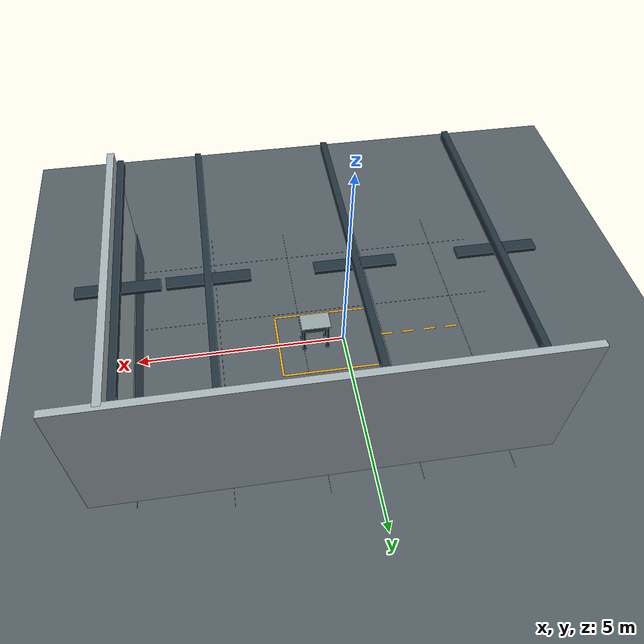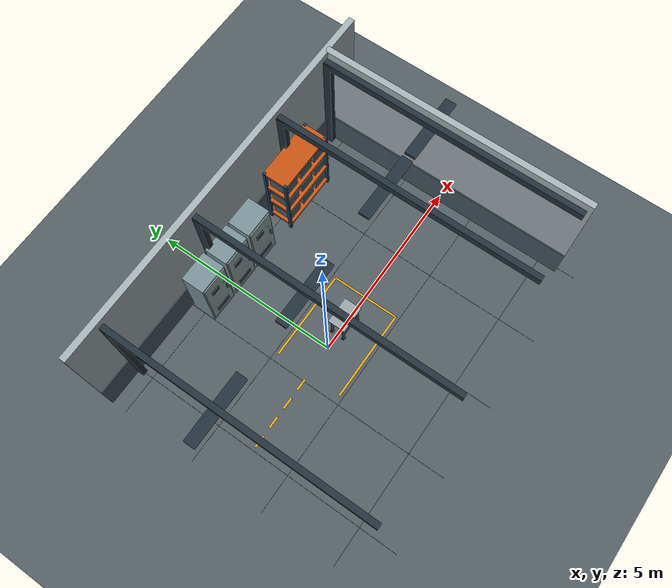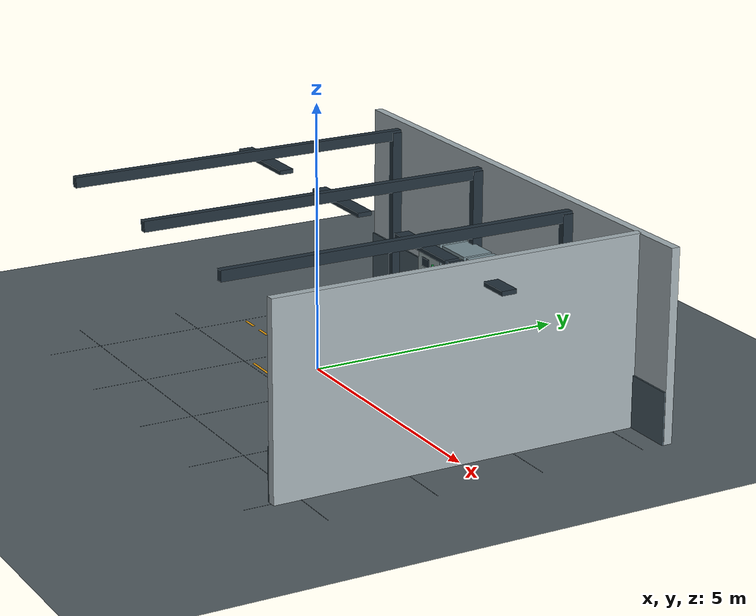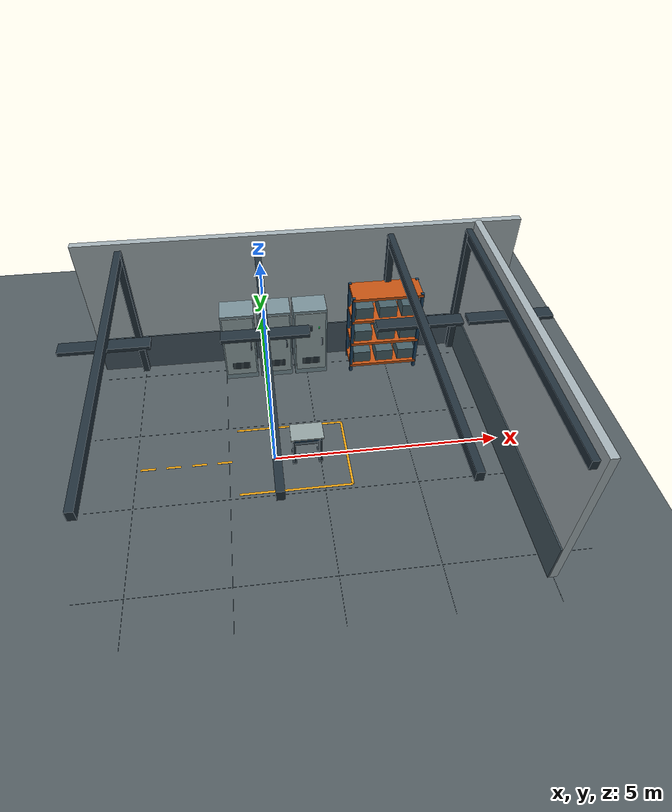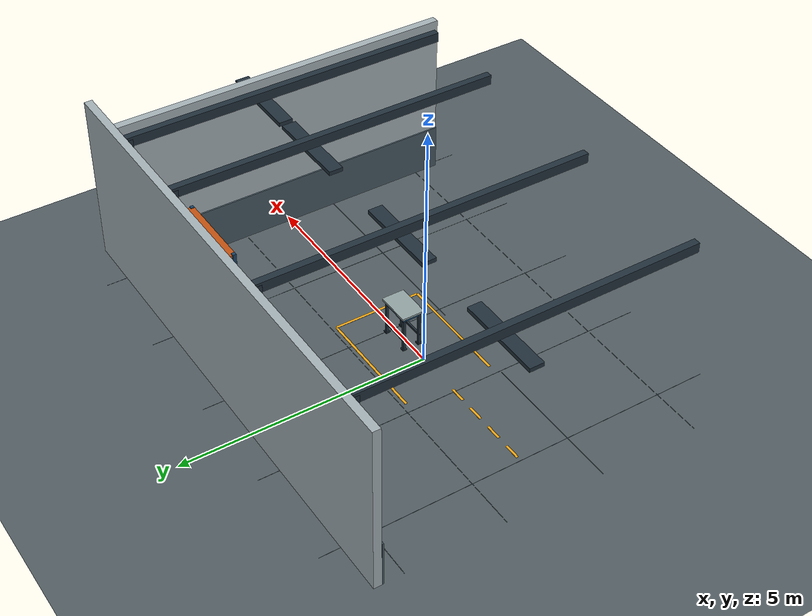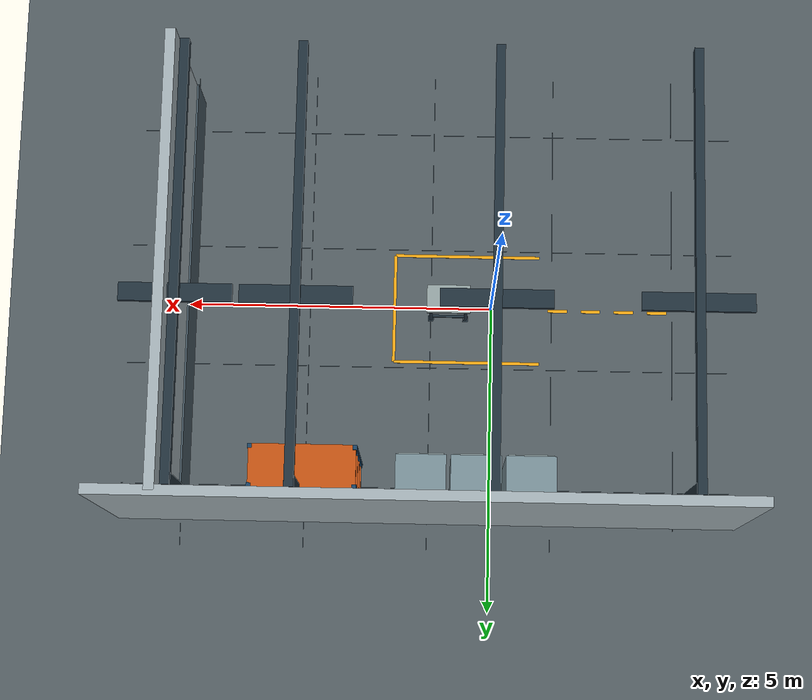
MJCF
<?xml version='1.0' encoding='utf-8'?>
<mujoco>
  <asset>
    <material name="factory_floor" rgba=".32 .36 .38 1" specular=".15" shininess=".2" />
    <material name="factory_wall" rgba=".64 .69 .71 1" specular=".15" shininess=".2" />
    <material name="factory_wainscot" rgba=".27 .34 .38 1" specular=".15" shininess=".2" />
    <material name="factory_frame" rgba=".13 .19 .23 1" specular=".15" shininess=".2" />
    <material name="factory_cabinet" rgba=".47 .56 .59 1" specular=".15" shininess=".2" />
    <material name="factory_door" rgba=".58 .65 .66 1" specular=".15" shininess=".2" />
    <material name="factory_yellow" rgba=".94 .65 .07 1" specular=".15" shininess=".2" />
    <material name="factory_shelf_blue" rgba=".10 .26 .39 1" specular=".15" shininess=".2" />
    <material name="factory_shelf_orange" rgba=".76 .32 .07 1" specular=".15" shininess=".2" />
    <material name="factory_bin" rgba=".27 .37 .40 1" specular=".15" shininess=".2" />
    <material name="factory_tabletop" rgba=".57 .63 .63 1" specular=".15" shininess=".2" />
    <material name="factory_led" rgba=".88 .94 1 1" specular=".15" shininess=".2" emission=".65" />
    <material name="factory_green" rgba=".12 .8 .35 1" specular=".15" shininess=".2" emission=".65" />
    <texture name="factory_background" type="skybox" builtin="gradient" rgb1=".35 .40 .44" rgb2=".48 .53 .56" width="256" height="1024" />
  </asset>
  <worldbody>
    <geom name="ground" type="plane" size="8 8 .1" material="factory_floor" contype="1" conaffinity="1023" />
    <geom name="floor_seam_x0" type="box" pos="-3 0 0.001" size="0.003 4 0.001" material="factory_wainscot" contype="0" conaffinity="0" />
    <geom name="floor_seam_x1" type="box" pos="-1 0 0.001" size="0.003 4 0.001" material="factory_wainscot" contype="0" conaffinity="0" />
    <geom name="floor_seam_x2" type="box" pos="1 0 0.001" size="0.003 4 0.001" material="factory_wainscot" contype="0" conaffinity="0" />
    <geom name="floor_seam_x3" type="box" pos="3 0 0.001" size="0.003 4 0.001" material="factory_wainscot" contype="0" conaffinity="0" />
    <geom name="floor_seam_x4" type="box" pos="5 0 0.001" size="0.003 4 0.001" material="factory_wainscot" contype="0" conaffinity="0" />
    <geom name="floor_seam_y0" type="box" pos="1 -3 0.001" size="5 0.003 0.001" material="factory_wainscot" contype="0" conaffinity="0" />
    <geom name="floor_seam_y1" type="box" pos="1 -1 0.001" size="5 0.003 0.001" material="factory_wainscot" contype="0" conaffinity="0" />
    <geom name="floor_seam_y2" type="box" pos="1 1 0.001" size="5 0.003 0.001" material="factory_wainscot" contype="0" conaffinity="0" />
    <geom name="floor_seam_y3" type="box" pos="1 3 0.001" size="5 0.003 0.001" material="factory_wainscot" contype="0" conaffinity="0" />
    <geom name="rear_wall" type="box" pos="1 3.5 1.75" size="5 0.08 1.75" material="factory_wall" contype="0" conaffinity="0" />
    <geom name="end_wall" type="box" pos="5 0 1.75" size="0.08 3.5 1.75" material="factory_wall" contype="0" conaffinity="0" />
    <geom name="rear_wall_lower" type="box" pos="1 3.4 0.48" size="5 0.015 0.48" material="factory_wainscot" contype="0" conaffinity="0" />
    <geom name="end_wall_lower" type="box" pos="4.9 0 0.48" size="0.015 3.5 0.48" material="factory_wainscot" contype="0" conaffinity="0" />
    <geom name="column_0" type="box" pos="-3 3.32 1.65" size="0.075 0.1 1.65" material="factory_frame" contype="0" conaffinity="0" />
    <geom name="beam_0" type="box" pos="-3 0 3.25" size="0.07 3.4 0.1" material="factory_frame" contype="0" conaffinity="0" />
    <geom name="light_housing_0" type="box" pos="-3 0.5 3.11" size="0.85 0.14 0.04" material="factory_frame" contype="0" conaffinity="0" />
    <geom name="light_panel_0" type="box" pos="-3 0.5 3.065" size="0.79 0.115 0.005" material="factory_led" contype="0" conaffinity="0" />
    <geom name="column_1" type="box" pos="0 3.32 1.65" size="0.075 0.1 1.65" material="factory_frame" contype="0" conaffinity="0" />
    <geom name="beam_1" type="box" pos="0 0 3.25" size="0.07 3.4 0.1" material="factory_frame" contype="0" conaffinity="0" />
    <geom name="light_housing_1" type="box" pos="0 0.5 3.11" size="0.85 0.14 0.04" material="factory_frame" contype="0" conaffinity="0" />
    <geom name="light_panel_1" type="box" pos="0 0.5 3.065" size="0.79 0.115 0.005" material="factory_led" contype="0" conaffinity="0" />
    <geom name="column_2" type="box" pos="3 3.32 1.65" size="0.075 0.1 1.65" material="factory_frame" contype="0" conaffinity="0" />
    <geom name="beam_2" type="box" pos="3 0 3.25" size="0.07 3.4 0.1" material="factory_frame" contype="0" conaffinity="0" />
    <geom name="light_housing_2" type="box" pos="3 0.5 3.11" size="0.85 0.14 0.04" material="factory_frame" contype="0" conaffinity="0" />
    <geom name="light_panel_2" type="box" pos="3 0.5 3.065" size="0.79 0.115 0.005" material="factory_led" contype="0" conaffinity="0" />
    <geom name="column_3" type="box" pos="4.8 3.32 1.65" size="0.075 0.1 1.65" material="factory_frame" contype="0" conaffinity="0" />
    <geom name="beam_3" type="box" pos="4.8 0 3.25" size="0.07 3.4 0.1" material="factory_frame" contype="0" conaffinity="0" />
    <geom name="light_housing_3" type="box" pos="4.8 0.5 3.11" size="0.85 0.14 0.04" material="factory_frame" contype="0" conaffinity="0" />
    <geom name="light_panel_3" type="box" pos="4.8 0.5 3.065" size="0.79 0.115 0.005" material="factory_led" contype="0" conaffinity="0" />
    <light name="factory_light_0" pos="0 -1 3" dir="0 0 -1" directional="true" diffuse=".48 .50 .52" ambient=".07 .07 .07" specular=".12 .12 .12" castshadow="false" />
    <light name="factory_light_1" pos="2 2 3" dir="0 0 -1" directional="true" diffuse=".32 .34 .36" ambient=".07 .07 .07" specular=".12 .12 .12" castshadow="false" />
    <light name="factory_light_2" pos="-2 1 2.8" dir="0 0 -1" directional="true" diffuse=".24 .25 .27" ambient=".07 .07 .07" specular=".12 .12 .12" castshadow="false" />
    <geom name="cabinet_0" type="box" pos="-0.6 2.99 0.95" size="0.39 0.3 0.95" material="factory_cabinet" contype="0" conaffinity="0" />
    <geom name="cabinet_door_0" type="box" pos="-0.6 2.68 1.0" size="0.355 0.015 0.84" material="factory_door" contype="0" conaffinity="0" />
    <geom name="cabinet_handle_0" type="box" pos="-0.32999999999999996 2.65 1.02" size="0.018 0.024 0.1" material="factory_frame" contype="0" conaffinity="0" />
    <geom name="cabinet_display_0" type="box" pos="-0.6799999999999999 2.65 1.42" size="0.12 0.012 0.08" material="factory_frame" contype="0" conaffinity="0" />
    <geom name="cabinet_indicator_0" type="box" pos="-0.39999999999999997 2.64 1.44" size="0.018 0.015 0.018" material="factory_green" contype="0" conaffinity="0" />
    <geom name="cabinet_vent_0_0" type="box" pos="-0.6 2.655 0.35" size="0.21 0.012 0.007" material="factory_wainscot" contype="0" conaffinity="0" />
    <geom name="cabinet_vent_0_1" type="box" pos="-0.6 2.655 0.38999999999999996" size="0.21 0.012 0.007" material="factory_wainscot" contype="0" conaffinity="0" />
    <geom name="cabinet_vent_0_2" type="box" pos="-0.6 2.655 0.43" size="0.21 0.012 0.007" material="factory_wainscot" contype="0" conaffinity="0" />
    <geom name="cabinet_vent_0_3" type="box" pos="-0.6 2.655 0.47" size="0.21 0.012 0.007" material="factory_wainscot" contype="0" conaffinity="0" />
    <geom name="cabinet_vent_0_4" type="box" pos="-0.6 2.655 0.51" size="0.21 0.012 0.007" material="factory_wainscot" contype="0" conaffinity="0" />
    <geom name="cabinet_1" type="box" pos="0.25 2.99 0.95" size="0.39 0.3 0.95" material="factory_cabinet" contype="0" conaffinity="0" />
    <geom name="cabinet_door_1" type="box" pos="0.25 2.68 1.0" size="0.355 0.015 0.84" material="factory_door" contype="0" conaffinity="0" />
    <geom name="cabinet_handle_1" type="box" pos="0.52 2.65 1.02" size="0.018 0.024 0.1" material="factory_frame" contype="0" conaffinity="0" />
    <geom name="cabinet_display_1" type="box" pos="0.16999999999999998 2.65 1.42" size="0.12 0.012 0.08" material="factory_frame" contype="0" conaffinity="0" />
    <geom name="cabinet_indicator_1" type="box" pos="0.45 2.64 1.44" size="0.018 0.015 0.018" material="factory_green" contype="0" conaffinity="0" />
    <geom name="cabinet_vent_1_0" type="box" pos="0.25 2.655 0.35" size="0.21 0.012 0.007" material="factory_wainscot" contype="0" conaffinity="0" />
    <geom name="cabinet_vent_1_1" type="box" pos="0.25 2.655 0.38999999999999996" size="0.21 0.012 0.007" material="factory_wainscot" contype="0" conaffinity="0" />
    <geom name="cabinet_vent_1_2" type="box" pos="0.25 2.655 0.43" size="0.21 0.012 0.007" material="factory_wainscot" contype="0" conaffinity="0" />
    <geom name="cabinet_vent_1_3" type="box" pos="0.25 2.655 0.47" size="0.21 0.012 0.007" material="factory_wainscot" contype="0" conaffinity="0" />
    <geom name="cabinet_vent_1_4" type="box" pos="0.25 2.655 0.51" size="0.21 0.012 0.007" material="factory_wainscot" contype="0" conaffinity="0" />
    <geom name="cabinet_2" type="box" pos="1.1 2.99 0.95" size="0.39 0.3 0.95" material="factory_cabinet" contype="0" conaffinity="0" />
    <geom name="cabinet_door_2" type="box" pos="1.1 2.68 1.0" size="0.355 0.015 0.84" material="factory_door" contype="0" conaffinity="0" />
    <geom name="cabinet_handle_2" type="box" pos="1.37 2.65 1.02" size="0.018 0.024 0.1" material="factory_frame" contype="0" conaffinity="0" />
    <geom name="cabinet_display_2" type="box" pos="1.02 2.65 1.42" size="0.12 0.012 0.08" material="factory_frame" contype="0" conaffinity="0" />
    <geom name="cabinet_indicator_2" type="box" pos="1.3 2.64 1.44" size="0.018 0.015 0.018" material="factory_green" contype="0" conaffinity="0" />
    <geom name="cabinet_vent_2_0" type="box" pos="1.1 2.655 0.35" size="0.21 0.012 0.007" material="factory_wainscot" contype="0" conaffinity="0" />
    <geom name="cabinet_vent_2_1" type="box" pos="1.1 2.655 0.38999999999999996" size="0.21 0.012 0.007" material="factory_wainscot" contype="0" conaffinity="0" />
    <geom name="cabinet_vent_2_2" type="box" pos="1.1 2.655 0.43" size="0.21 0.012 0.007" material="factory_wainscot" contype="0" conaffinity="0" />
    <geom name="cabinet_vent_2_3" type="box" pos="1.1 2.655 0.47" size="0.21 0.012 0.007" material="factory_wainscot" contype="0" conaffinity="0" />
    <geom name="cabinet_vent_2_4" type="box" pos="1.1 2.655 0.51" size="0.21 0.012 0.007" material="factory_wainscot" contype="0" conaffinity="0" />
    <geom name="rack_post_2.1_2.65" type="box" pos="2.1 2.65 1.1" size="0.035 0.035 1.1" material="factory_shelf_blue" contype="0" conaffinity="0" />
    <geom name="rack_post_2.1_3.25" type="box" pos="2.1 3.25 1.1" size="0.035 0.035 1.1" material="factory_shelf_blue" contype="0" conaffinity="0" />
    <geom name="rack_post_3.7_2.65" type="box" pos="3.7 2.65 1.1" size="0.035 0.035 1.1" material="factory_shelf_blue" contype="0" conaffinity="0" />
    <geom name="rack_post_3.7_3.25" type="box" pos="3.7 3.25 1.1" size="0.035 0.035 1.1" material="factory_shelf_blue" contype="0" conaffinity="0" />
    <geom name="rack_shelf_0" type="box" pos="2.9 2.95 0.18" size="0.82 0.34 0.035" material="factory_shelf_orange" contype="0" conaffinity="0" />
    <geom name="rack_bin_0_0" type="box" pos="2.38 2.94 0.37" size="0.21 0.25 0.15" material="factory_bin" contype="0" conaffinity="0" />
    <geom name="rack_bin_0_1" type="box" pos="2.94 2.94 0.37" size="0.21 0.25 0.15" material="factory_bin" contype="0" conaffinity="0" />
    <geom name="rack_bin_0_2" type="box" pos="3.48 2.94 0.37" size="0.21 0.25 0.15" material="factory_bin" contype="0" conaffinity="0" />
    <geom name="rack_shelf_1" type="box" pos="2.9 2.95 0.85" size="0.82 0.34 0.035" material="factory_shelf_orange" contype="0" conaffinity="0" />
    <geom name="rack_bin_1_0" type="box" pos="2.38 2.94 1.04" size="0.21 0.25 0.15" material="factory_bin" contype="0" conaffinity="0" />
    <geom name="rack_bin_1_1" type="box" pos="2.94 2.94 1.04" size="0.21 0.25 0.15" material="factory_bin" contype="0" conaffinity="0" />
    <geom name="rack_bin_1_2" type="box" pos="3.48 2.94 1.04" size="0.21 0.25 0.15" material="factory_bin" contype="0" conaffinity="0" />
    <geom name="rack_shelf_2" type="box" pos="2.9 2.95 1.52" size="0.82 0.34 0.035" material="factory_shelf_orange" contype="0" conaffinity="0" />
    <geom name="rack_bin_2_0" type="box" pos="2.38 2.94 1.71" size="0.21 0.25 0.15" material="factory_bin" contype="0" conaffinity="0" />
    <geom name="rack_bin_2_1" type="box" pos="2.94 2.94 1.71" size="0.21 0.25 0.15" material="factory_bin" contype="0" conaffinity="0" />
    <geom name="rack_bin_2_2" type="box" pos="3.48 2.94 1.71" size="0.21 0.25 0.15" material="factory_bin" contype="0" conaffinity="0" />
    <geom name="rack_shelf_3" type="box" pos="2.9 2.95 2.15" size="0.82 0.34 0.035" material="factory_shelf_orange" contype="0" conaffinity="0" />
    <geom name="cell_line_-0.9" type="box" pos="0.4 -0.9 0.003" size="1.2 0.025 0.002" material="factory_yellow" contype="0" conaffinity="0" />
    <geom name="cell_line_0.9" type="box" pos="0.4 0.9 0.003" size="1.2 0.025 0.002" material="factory_yellow" contype="0" conaffinity="0" />
    <geom name="cell_end" type="box" pos="1.6 0 0.003" size="0.025 0.9 0.002" material="factory_yellow" contype="0" conaffinity="0" />
    <geom name="approach_dash_0" type="box" pos="-1.1 0 0.003" size="0.16 0.025 0.002" material="factory_yellow" contype="0" conaffinity="0" />
    <geom name="approach_dash_1" type="box" pos="-1.65 0 0.003" size="0.16 0.025 0.002" material="factory_yellow" contype="0" conaffinity="0" />
    <geom name="approach_dash_2" type="box" pos="-2.2 0 0.003" size="0.16 0.025 0.002" material="factory_yellow" contype="0" conaffinity="0" />
    <geom name="approach_dash_3" type="box" pos="-2.75 0 0.003" size="0.16 0.025 0.002" material="factory_yellow" contype="0" conaffinity="0" />
    <body name="workbench" pos="0.7109761142730713 0 0">
      <geom name="workbench_top" type="box" pos="0 0 0.78" size="0.35 0.23 0.02" material="factory_tabletop" contype="1" conaffinity="1023" />
      <geom name="workbench_leg_0_0" type="box" pos="-0.285 -0.165 0.38" size="0.025 0.025 0.38" material="factory_frame" contype="1" conaffinity="1023" />
      <geom name="workbench_foot_0_0" type="box" pos="-0.285 -0.165 0.012" size="0.045 0.045 0.012" material="factory_frame" contype="1" conaffinity="1023" />
      <geom name="workbench_leg_0_1" type="box" pos="-0.285 0.165 0.38" size="0.025 0.025 0.38" material="factory_frame" contype="1" conaffinity="1023" />
      <geom name="workbench_foot_0_1" type="box" pos="-0.285 0.165 0.012" size="0.045 0.045 0.012" material="factory_frame" contype="1" conaffinity="1023" />
      <geom name="workbench_leg_1_0" type="box" pos="0.285 -0.165 0.38" size="0.025 0.025 0.38" material="factory_frame" contype="1" conaffinity="1023" />
      <geom name="workbench_foot_1_0" type="box" pos="0.285 -0.165 0.012" size="0.045 0.045 0.012" material="factory_frame" contype="1" conaffinity="1023" />
      <geom name="workbench_leg_1_1" type="box" pos="0.285 0.165 0.38" size="0.025 0.025 0.38" material="factory_frame" contype="1" conaffinity="1023" />
      <geom name="workbench_foot_1_1" type="box" pos="0.285 0.165 0.012" size="0.045 0.045 0.012" material="factory_frame" contype="1" conaffinity="1023" />
      <geom name="workbench_apron_-0.165" type="box" pos="0 -0.165 0.72" size="0.31 0.025 0.04" material="factory_shelf_blue" contype="1" conaffinity="1023" />
      <geom name="workbench_brace_-0.165" type="box" pos="0 -0.165 0.22" size="0.31 0.02 0.02" material="factory_frame" contype="1" conaffinity="1023" />
      <geom name="workbench_apron_0.165" type="box" pos="0 0.165 0.72" size="0.31 0.025 0.04" material="factory_shelf_blue" contype="1" conaffinity="1023" />
      <geom name="workbench_brace_0.165" type="box" pos="0 0.165 0.22" size="0.31 0.02 0.02" material="factory_frame" contype="1" conaffinity="1023" />
      <geom name="workbench_side_-0.285" type="box" pos="-0.285 0 0.72" size="0.025 0.19 0.04" material="factory_shelf_blue" contype="1" conaffinity="1023" />
      <geom name="workbench_side_0.285" type="box" pos="0.285 0 0.72" size="0.025 0.19 0.04" material="factory_shelf_blue" contype="1" conaffinity="1023" />
    </body>
    <light name="factory_front_fill" pos="-1 -3 2" dir="0 1 -.3" directional="true" diffuse=".26 .25 .23" ambient="0 0 0" castshadow="false" />
  </worldbody>
</mujoco>
